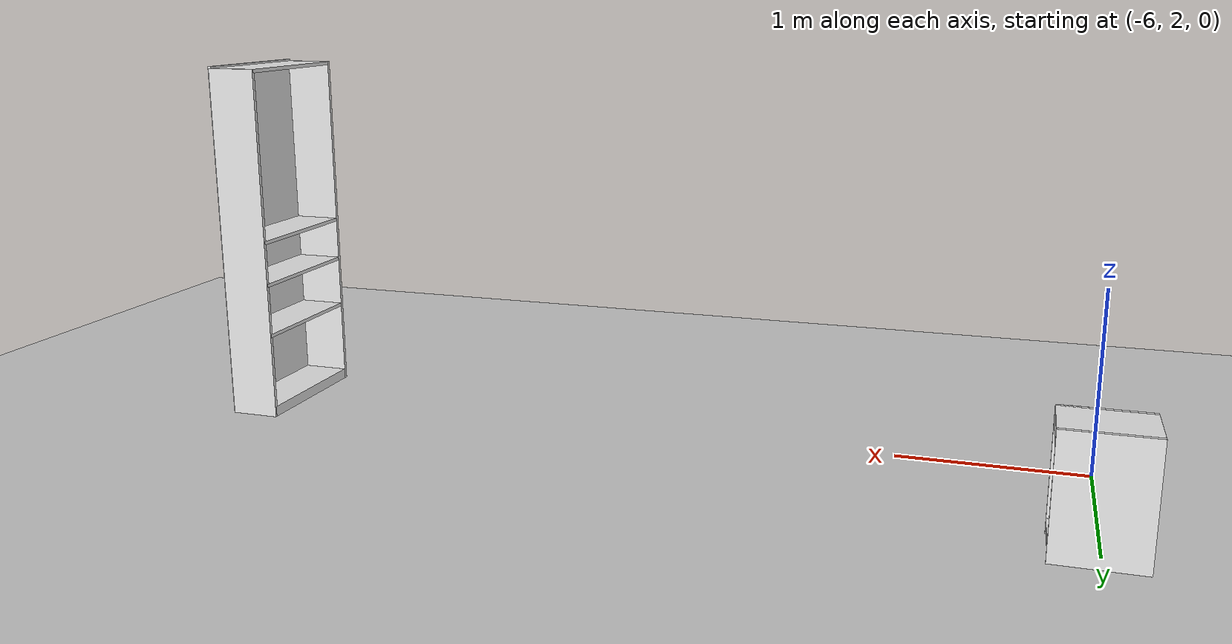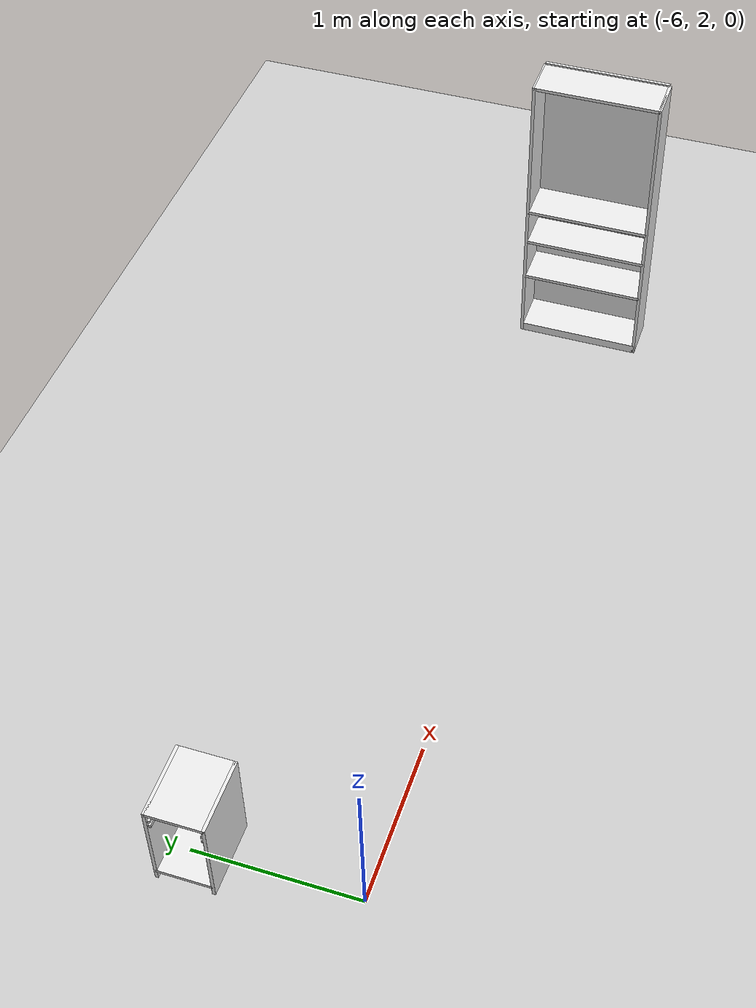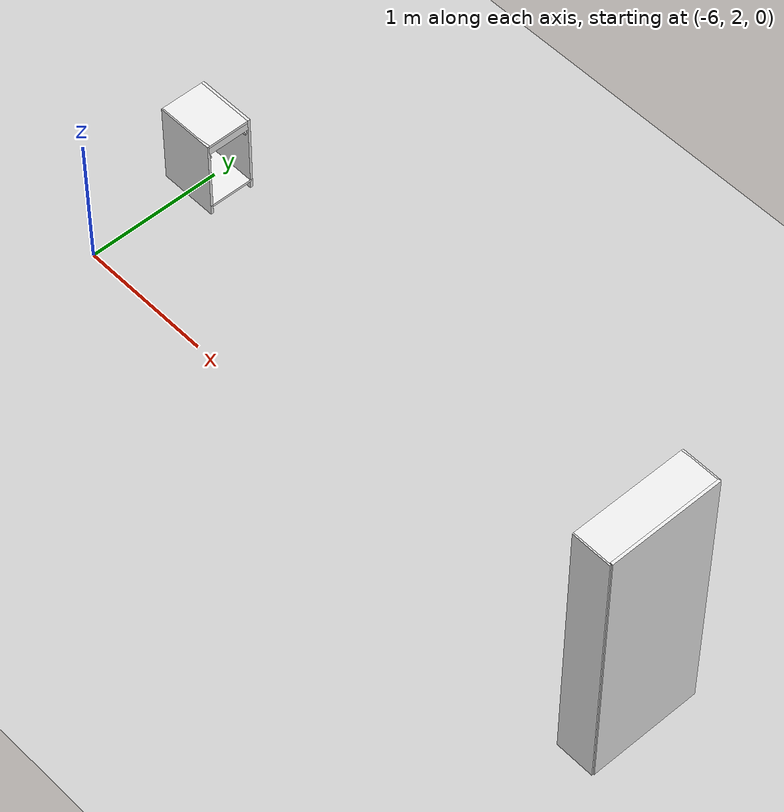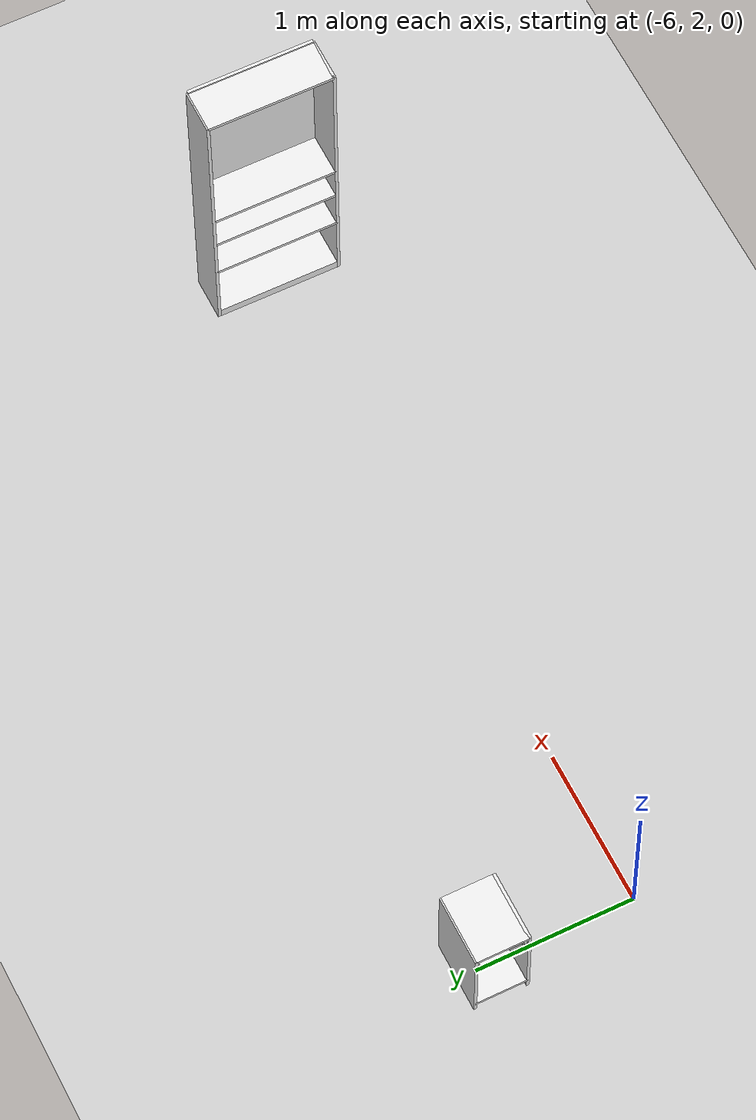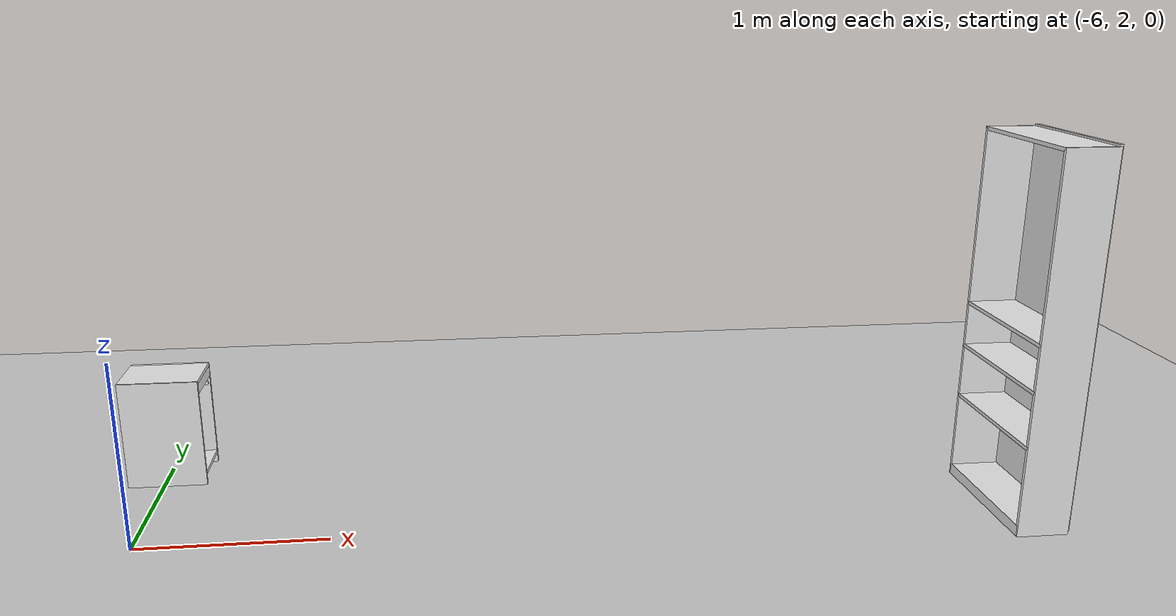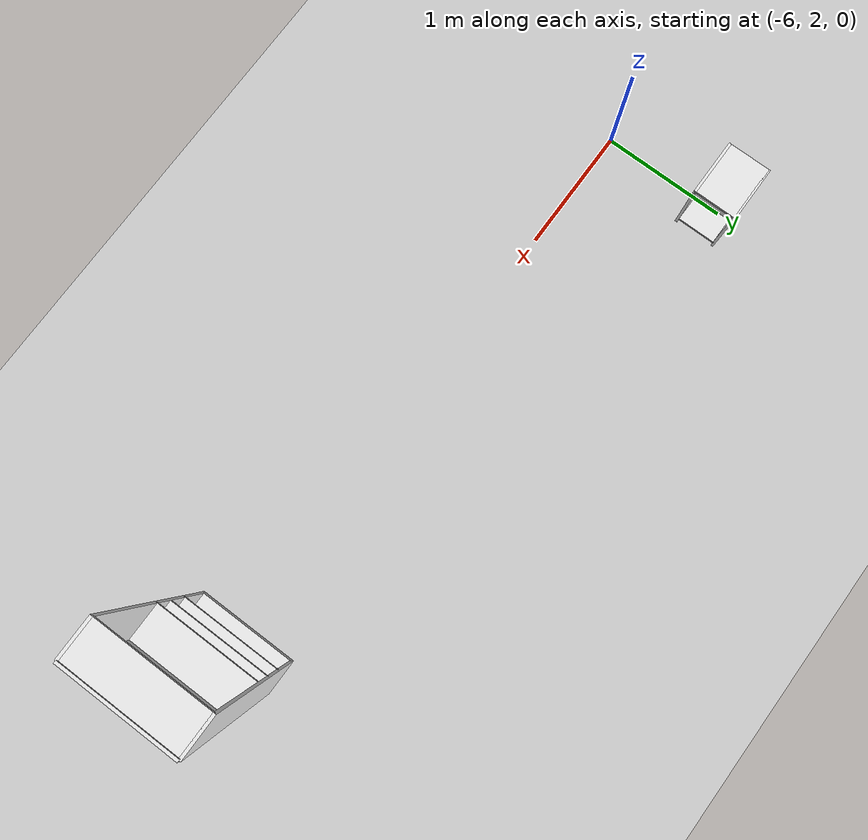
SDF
<sdf version="1.6">
 <world name="default">
  <light name="sun" type="directional">
   <pose>0 0 10 0 -0 0</pose>
   <diffuse>0.8 0.8 0.8 1</diffuse>
   <specular>0.2 0.2 0.2 1</specular>
   <attenuation>
    <range>1000</range>
    <constant>0.9</constant>
    <linear>0.01</linear>
    <quadratic>0.001</quadratic>
   </attenuation>
   <direction>-0.5 0.1 -0.9</direction>
  </light>
  <model name="ground_plane">
   <static>1</static>
   <link name="link">
    <collision name="collision">
     <geometry><plane><normal>0 0 1</normal><size>100 100</size></plane></geometry>
     <surface><friction><ode><mu>100</mu><mu2>50</mu2></ode></friction></surface>
    </collision>
    <visual name="visual">
     <cast_shadows>0</cast_shadows>
     <geometry><plane><normal>0 0 1</normal><size>100 100</size></plane></geometry>
     <material>
      <script><uri>file://media/materials/scripts/gazebo.material</uri><name>Gazebo/Grey</name></script>
     </material>
    </visual>
   </link>
  </model>
  <gravity>0 0 -9.8</gravity>
  <magnetic_field>6e-06 2.3e-05 -4.2e-05</magnetic_field>
  <atmosphere type="adiabatic"/>
  <physics name="default_physics" default="0" type="ode">
   <max_step_size>0.001</max_step_size>
   <real_time_factor>1</real_time_factor>
   <real_time_update_rate>1000</real_time_update_rate>
  </physics>
  <scene><ambient>0.4 0.4 0.4 1</ambient><background>0.7 0.7 0.7 1</background><shadows>1</shadows></scene>
  <audio><device>default</device></audio>
  <spherical_coordinates>
   <surface_model>EARTH_WGS84</surface_model>
   <latitude_deg>0</latitude_deg>
   <longitude_deg>0</longitude_deg>
   <elevation>0</elevation>
   <heading_deg>0</heading_deg>
  </spherical_coordinates>
  <model name="wrc_bookshelf">
   <static>1</static>
   <link name="link">
    <inertial><mass>1</mass></inertial>
    <collision name="back">
     <pose>0 0.14 1.02 0 -0 0</pose>
     <geometry><box><size>0.8 0.02 2.02</size></box></geometry>
    </collision>
    <visual name="back_v">
     <pose>0 0.14 1.02 0 -0 0</pose>
     <geometry><box><size>0.8 0.02 2.02</size></box></geometry>
     <material>
      <script><uri>file://media/materials/scripts/gazebo.material</uri><name>Gazebo/White</name></script>
     </material>
    </visual>
    <collision name="left_side">
     <pose>0.4 0 1.01 0 -0 0</pose>
     <geometry><box><size>0.02 0.28 2.02</size></box></geometry>
    </collision>
    <visual name="left_side_v">
     <pose>0.4 0 1.01 0 -0 0</pose>
     <geometry><box><size>0.02 0.28 2.02</size></box></geometry>
     <material>
      <script><uri>file://media/materials/scripts/gazebo.material</uri><name>Gazebo/White</name></script>
     </material>
    </visual>
    <collision name="right_side">
     <pose>-0.4 0 1.01 0 -0 0</pose>
     <geometry><box><size>0.02 0.28 2.02</size></box></geometry>
    </collision>
    <visual name="right_side_v">
     <pose>-0.4 0 1.01 0 -0 0</pose>
     <geometry><box><size>0.02 0.28 2.02</size></box></geometry>
     <material>
      <script><uri>file://media/materials/scripts/gazebo.material</uri><name>Gazebo/White</name></script>
     </material>
    </visual>
    <collision name="bottom">
     <pose>0 0 0.03 0 -0 0</pose>
     <geometry><box><size>0.8 0.28 0.06</size></box></geometry>
    </collision>
    <visual name="bottom_v">
     <pose>0 0 0.03 0 -0 0</pose>
     <geometry><box><size>0.8 0.28 0.06</size></box></geometry>
     <material>
      <script><uri>file://media/materials/scripts/gazebo.material</uri><name>Gazebo/White</name></script>
     </material>
    </visual>
    <collision name="top">
     <pose>0 0 2.01 0 -0 0</pose>
     <geometry><box><size>0.8 0.28 0.02</size></box></geometry>
    </collision>
    <visual name="top_v">
     <pose>0 0 2.01 0 -0 0</pose>
     <geometry><box><size>0.8 0.28 0.02</size></box></geometry>
     <material>
      <script><uri>file://media/materials/scripts/gazebo.material</uri><name>Gazebo/White</name></script>
     </material>
    </visual>
    <collision name="slit1">
     <pose>0 0 0.49 0 -0 0</pose>
     <geometry><box><size>0.8 0.28 0.02</size></box></geometry>
    </collision>
    <visual name="slit1_v">
     <pose>0 0 0.49 0 -0 0</pose>
     <geometry><box><size>0.8 0.28 0.02</size></box></geometry>
     <material>
      <script><uri>file://media/materials/scripts/gazebo.material</uri><name>Gazebo/White</name></script>
     </material>
    </visual>
    <collision name="slit2">
     <pose>0 0 0.79 0 -0 0</pose>
     <geometry><box><size>0.8 0.28 0.02</size></box></geometry>
    </collision>
    <visual name="slit2_v">
     <pose>0 0 0.79 0 -0 0</pose>
     <geometry><box><size>0.8 0.28 0.02</size></box></geometry>
     <material>
      <script><uri>file://media/materials/scripts/gazebo.material</uri><name>Gazebo/White</name></script>
     </material>
    </visual>
    <collision name="slit3">
     <pose>0 0 1.04 0 -0 0</pose>
     <geometry><box><size>0.8 0.28 0.02</size></box></geometry>
    </collision>
    <visual name="slit3_v">
     <pose>0 0 1.04 0 -0 0</pose>
     <geometry><box><size>0.8 0.28 0.02</size></box></geometry>
     <material>
      <script><uri>file://media/materials/scripts/gazebo.material</uri><name>Gazebo/White</name></script>
     </material>
    </visual>
   </link>
   <pose>-1.31194 2.02813 0 0 0 -1.5708</pose>
  </model>
  <model name="bedside">
   <static>1</static>
   <link name="link">
    <inertial><mass>1</mass></inertial>
    <collision name="slit1">
     <pose>0 -0.495 0.21 0 -0 0</pose>
     <geometry><box><size>0.44 0.02 0.82</size></box></geometry>
    </collision>
    <visual name="slit1_v">
     <pose>0 -0.495 0.21 0 -0 0</pose>
     <geometry><box><size>0.44 0.02 0.82</size></box></geometry>
     <material>
      <script><uri>file://media/materials/scripts/gazebo.material</uri><name>Gazebo/White</name></script>
     </material>
    </visual>
    <collision name="slit2">
     <pose>0 -0.165 0.21 0 -0 0</pose>
     <geometry><box><size>0.44 0.02 0.82</size></box></geometry>
    </collision>
    <visual name="slit2_v">
     <pose>0 -0.165 0.21 0 -0 0</pose>
     <geometry><box><size>0.44 0.02 0.82</size></box></geometry>
     <material>
      <script><uri>file://media/materials/scripts/gazebo.material</uri><name>Gazebo/White</name></script>
     </material>
    </visual>
    <collision name="holder_slit1_1_left_low">
     <pose>0 -0.48 0.5 0 -0 0</pose>
     <geometry><box><size>0.42 0.02 0.02</size></box></geometry>
    </collision>
    <visual name="holder_slit1_1_left_low_v">
     <pose>0 -0.48 0.5 0 -0 0</pose>
     <geometry><box><size>0.42 0.02 0.02</size></box></geometry>
     <material>
      <script><uri>file://media/materials/scripts/gazebo.material</uri><name>Gazebo/White</name></script>
     </material>
    </visual>
    <collision name="holder_slit1_1_left_high">
     <pose>0 -0.48 0.54 0 -0 0</pose>
     <geometry><box><size>0.42 0.02 0.02</size></box></geometry>
    </collision>
    <visual name="holder_slit1_1_left_high_v">
     <pose>0 -0.48 0.54 0 -0 0</pose>
     <geometry><box><size>0.42 0.02 0.02</size></box></geometry>
     <material>
      <script><uri>file://media/materials/scripts/gazebo.material</uri><name>Gazebo/White</name></script>
     </material>
    </visual>
    <collision name="holder_slit1_1_right_low">
     <pose>0 -0.18 0.5 0 -0 0</pose>
     <geometry><box><size>0.42 0.02 0.02</size></box></geometry>
    </collision>
    <visual name="holder_slit1_1_right_low_v">
     <pose>0 -0.18 0.5 0 -0 0</pose>
     <geometry><box><size>0.42 0.02 0.02</size></box></geometry>
     <material>
      <script><uri>file://media/materials/scripts/gazebo.material</uri><name>Gazebo/White</name></script>
     </material>
    </visual>
    <collision name="holder_slit1_1_right_high">
     <pose>0 -0.18 0.54 0 -0 0</pose>
     <geometry><box><size>0.42 0.02 0.02</size></box></geometry>
    </collision>
    <visual name="holder_slit1_1_right_high_v">
     <pose>0 -0.18 0.54 0 -0 0</pose>
     <geometry><box><size>0.42 0.02 0.02</size></box></geometry>
     <material>
      <script><uri>file://media/materials/scripts/gazebo.material</uri><name>Gazebo/White</name></script>
     </material>
    </visual>
    <collision name="top1">
     <pose>0 -0.33 0.61 0 -0 0</pose>
     <geometry><box><size>0.44 0.33 0.02</size></box></geometry>
    </collision>
    <visual name="top1_v">
     <pose>0 -0.33 0.61 0 -0 0</pose>
     <geometry><box><size>0.44 0.33 0.02</size></box></geometry>
     <material>
      <script><uri>file://media/materials/scripts/gazebo.material</uri><name>Gazebo/White</name></script>
     </material>
    </visual>
    <collision name="top1_front">
     <pose>0.21 -0.33 0.57 0 -0 0</pose>
     <geometry><box><size>0.02 0.33 0.06</size></box></geometry>
    </collision>
    <visual name="top1_front_v">
     <pose>0.21 -0.33 0.57 0 -0 0</pose>
     <geometry><box><size>0.02 0.33 0.06</size></box></geometry>
     <material>
      <script><uri>file://media/materials/scripts/gazebo.material</uri><name>Gazebo/White</name></script>
     </material>
    </visual>
    <collision name="bottom">
     <pose>0 -0.33 0.06 0 -0 0</pose>
     <geometry><box><size>0.44 0.33 0.02</size></box></geometry>
    </collision>
    <visual name="bottom_v">
     <pose>0 -0.33 0.06 0 -0 0</pose>
     <geometry><box><size>0.44 0.33 0.02</size></box></geometry>
     <material>
      <script><uri>file://media/materials/scripts/gazebo.material</uri><name>Gazebo/White</name></script>
     </material>
    </visual>
   </link>
   <pose>-5.98351 3.27214 0 0 -0 0</pose>
  </model>
 </world>
</sdf>
